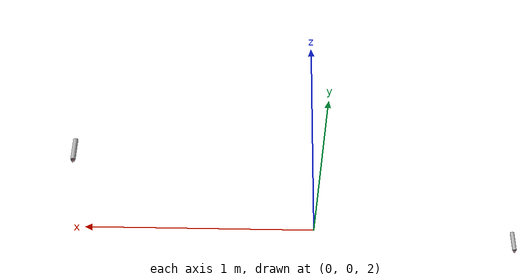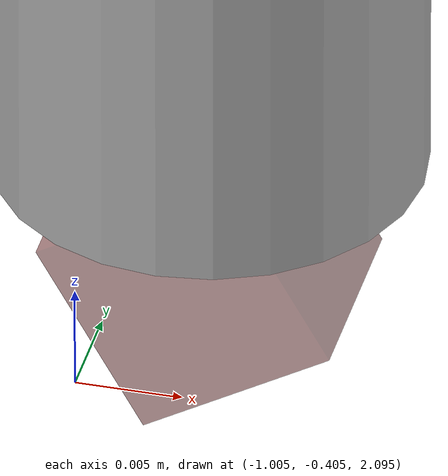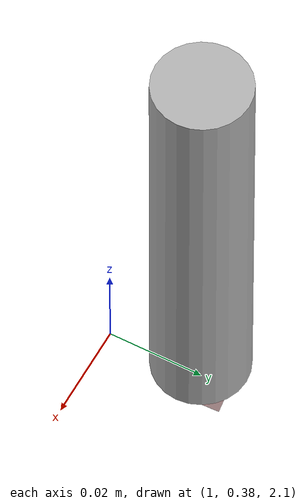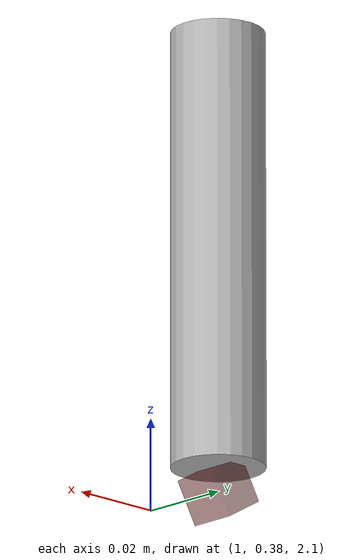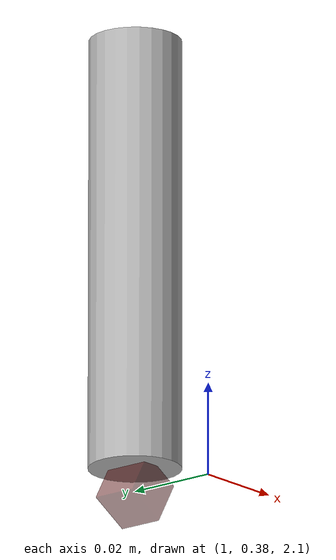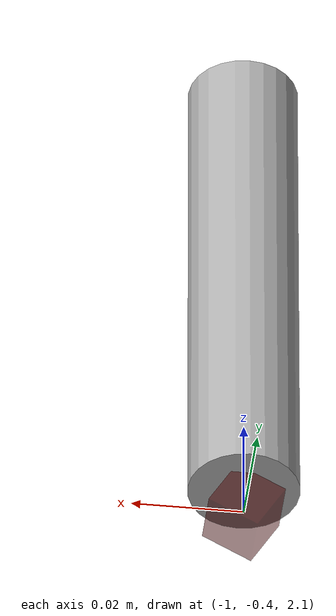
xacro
<?xml version="1.0"?>
<robot xmlns:xacro="http://ros.org/wiki/xacro" name="ur5" >

    <!-- some constants -->
    <xacro:property name="PI" value="3.1415926"/>

    <xacro:property name="pole_length" value="0.1"/>    <!-- with half camera length -->
    <xacro:property name="pole_radius" value="0.01"/>

    <xacro:property name="camera_link" value="0.01"/>

    <xacro:property name="camera_roll" value="0"/>
    <xacro:property name="camera_pitch" value="${5*PI/6}"/>
    <xacro:property name="camera_yaw" value="${PI}"/>

    <xacro:property name="fixed_x" value="1"/>   <!-- swift left a little to catch better motion of EduMIP -->
    <xacro:property name="fixed_y" value="0.4"/>
    <xacro:property name="fixed_z" value="2.2"/>

    <xacro:property name="artag_x" value="0.5"/>
    <xacro:property name="artag_y" value="0.5"/>
    <xacro:property name="artag_z" value="1.51"/>
    <xacro:property name="artag_yaw" value="${PI/3}"/>

    <link name="world"/>

    <!-- single camera -->
    <xacro:macro name="single_camera" params="prefix reflect">

        <!-- fixing point -->
        <link name="${prefix}_fixed_base"/>

        <joint name="${prefix}_fixed_joint" type="fixed">
            <origin xyz="${fixed_x*reflect} ${fixed_y*reflect} ${fixed_z}" rpy="0 0 0"/>
            <parent link="world"/>
            <child link="${prefix}_fixed_base"/>
        </joint>

        <!-- a streching pole -->
        <link name="${prefix}_pole">
            <collision>
                <geometry>
                    <cylinder radius="${pole_radius}" length="${pole_length-camera_link/2}"/>
                </geometry>>
                <origin rpy="0 0 0" xyz="0 0 ${(pole_length-camera_link/2)/2}"/>
            </collision>
            <visual>
                <geometry>
                    <cylinder radius="${pole_radius}" length="${pole_length-camera_link/2}"/>
                </geometry>>
                <origin rpy="0 0 0" xyz="0 0 ${(pole_length-camera_link/2)/2}"/>
                <material name="light_grey">
                    <color rgba="0.7 0.7 0.7 1.0"/>
                </material>
            </visual>
            <inertial>
                <origin rpy="0 0 0" xyz="0 0 ${(pole_length-camera_link/2)/2}"/>
                <mass value="0.5"/>
                <inertia ixx="1.0e-5" ixy="0.0" ixz="0.0" iyy="1.0e-5" iyz="0.0" izz="1.0e-5"/>
            </inertial>
        </link>

        <gazebo reference="${prefix}_pole">
            <material>Gazebo/Grey</material>
            <mu1>0.2</mu1>
            <mu2>0.2</mu2>
        </gazebo>

        <joint name="${prefix}_pole_joint" type="fixed">
            <origin xyz="0 0 ${-pole_length+camera_link/2}" rpy="0 0 0"/>
            <parent link="${prefix}_fixed_base"/>
            <child link="${prefix}_pole"/>
        </joint>

        <!-- camera -->
        <link name="${prefix}_camera_link">
            <collision>
                <origin xyz="0 0 0" rpy="0 0 0"/>
                <geometry>
                    <box size="${camera_link} ${camera_link} ${camera_link}"/>
                </geometry>
            </collision>

            <visual>
                <origin xyz="0 0 0" rpy="0 0 0"/>
                <geometry>
                    <box size="${camera_link} ${camera_link} ${camera_link}"/>
                </geometry>
                <material name="indigo">
                    <color rgba="0.3 0.0 0.0 0.5"/>
                </material>
            </visual>

            <inertial>
                <mass value="1e-5"/>
                <origin xyz="0 0 ${camera_link/2}" rpy="0 0 0"/>
                <inertia ixx="1e-6" ixy="0" ixz="0" iyy="1e-6" iyz="0" izz="1e-6"/>
            </inertial>
        </link>

        <joint name="${prefix}_camera_joint" type="fixed">
            <origin xyz="0 0 ${-camera_link/2}" rpy="${camera_roll} ${reflect*camera_pitch} ${camera_yaw}"/>
            <parent link="${prefix}_pole"/>
            <child link="${prefix}_camera_link"/>
        </joint>

        <gazebo reference="${prefix}_camera_link">
            <material>Gazebo/Indigo</material>
            <mu1>0.2</mu1>
            <mu2>0.2</mu2>
        </gazebo>

        <link name="${prefix}_camera_sensor"/>

        <joint name="${prefix}_camera_sensor_joint" type="fixed">
            <origin xyz="0 0 0" rpy="0 ${-PI/2} ${PI/2}"/>
            <parent link="${prefix}_camera_link"/>
            <child link="${prefix}_camera_sensor"/>
        </joint>

        <!-- camera plugin-->
        <gazebo reference ="${prefix}_camera_link">
            <sensor type="camera" name="camera">
            <update_rate>30.0</update_rate>
            <camera name="head">
            <pose>0 0 0 0 -1.5708 1.5708</pose>

                <image>
                <width>1920</width>
                <height>1080</height>
                <format>R8G8B8</format>
                </image>
                <clip>
                <near>0.02</near>
                <far>300</far>
                </clip>
                <noise>
                    <type>gaussian</type>
                    <mean>0.0</mean>
                    <stddev>0.007</stddev>
                </noise>
            </camera>
            <plugin name="camera_controller" filename="libgazebo_ros_camera.so">
                <alwaysOn>true</alwaysOn>
                <updateRate>0.0</updateRate>
                <cameraName>${prefix}_camera</cameraName>
                <imageTopicName>image_raw</imageTopicName>
                <cameraInfoTopicName>camera_info</cameraInfoTopicName>
                <frameName>${prefix}_camera_link</frameName>
                <hackBaseline>0.0</hackBaseline>
                <distortionK1>0.0</distortionK1>
                <distortionK2>0.0</distortionK2>
                <distortionK3>0.0</distortionK3>
                <distortionT1>0.0</distortionT1>
                <distortionT2>0.0</distortionT2>
            </plugin>
            </sensor>
        </gazebo>

    </xacro:macro>

    <xacro:single_camera prefix="left" reflect="-1"/>
    <xacro:single_camera prefix="right" reflect="1"/>

    </robot>
